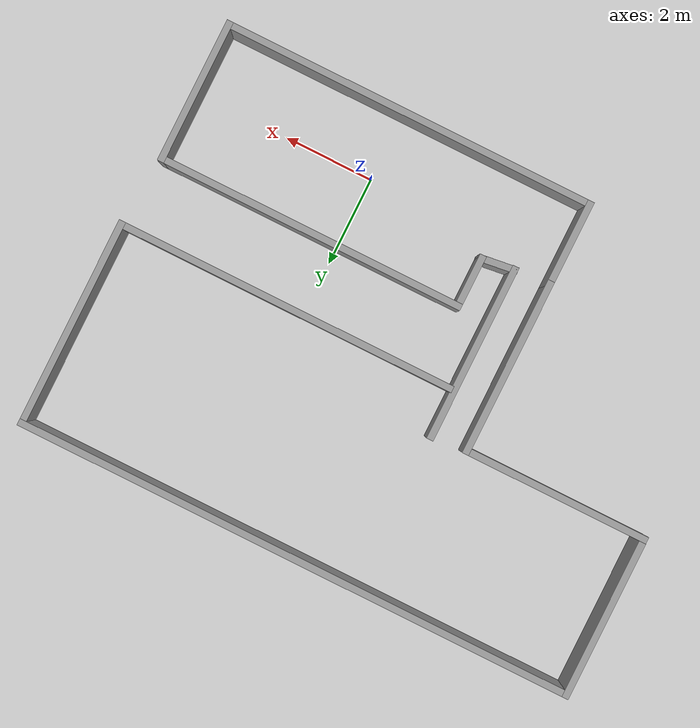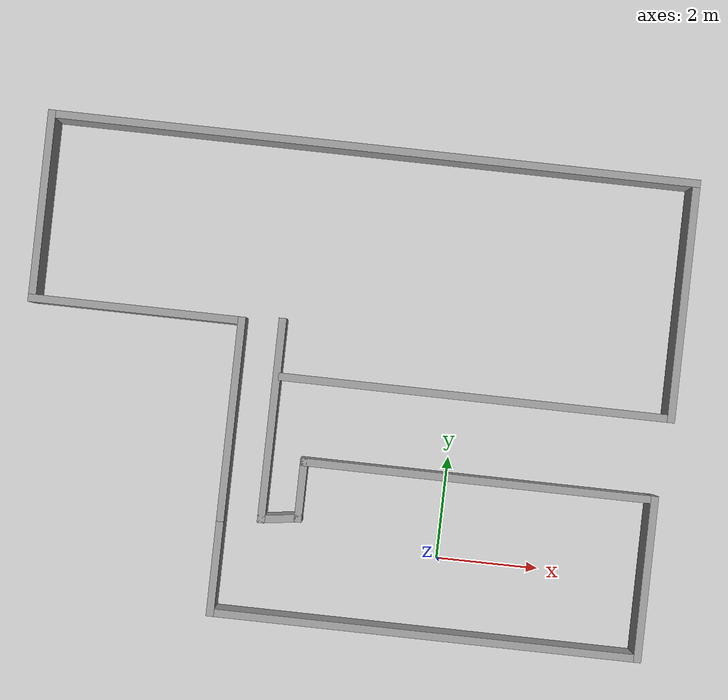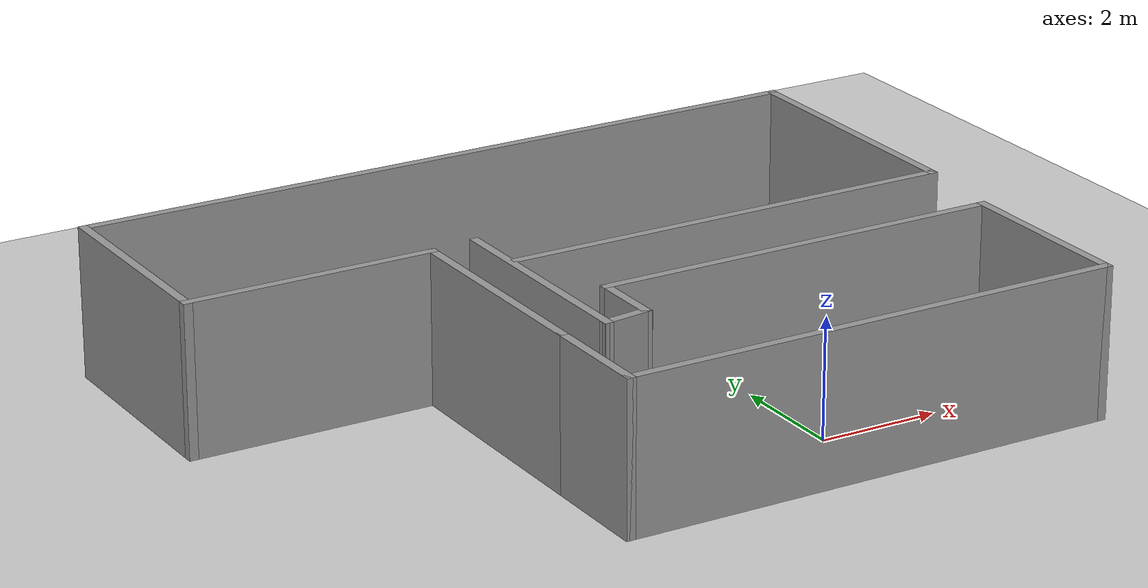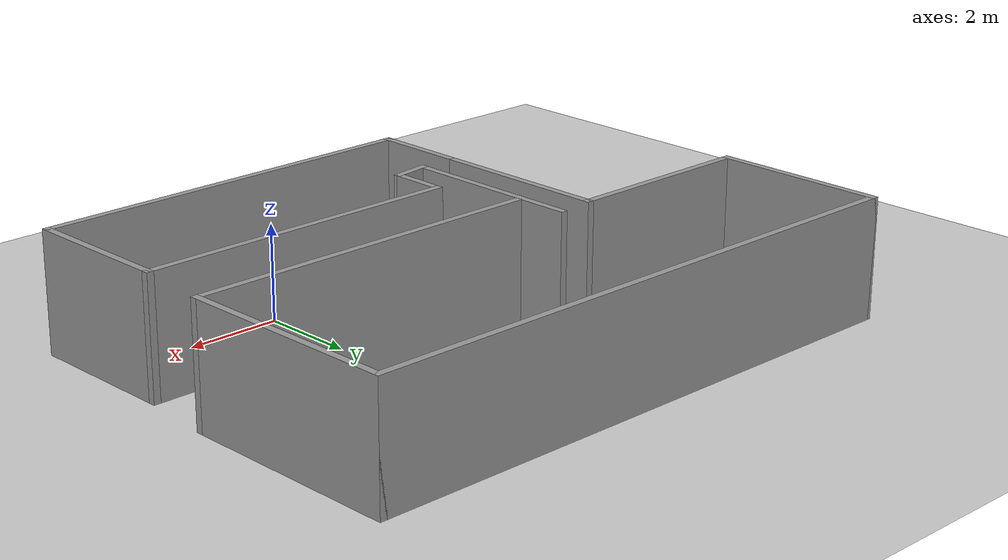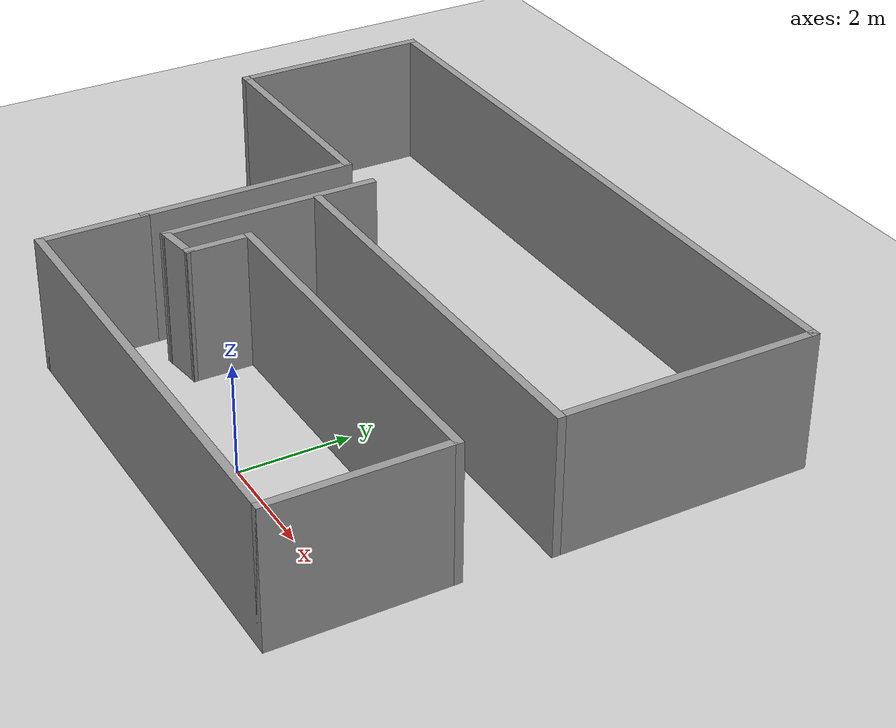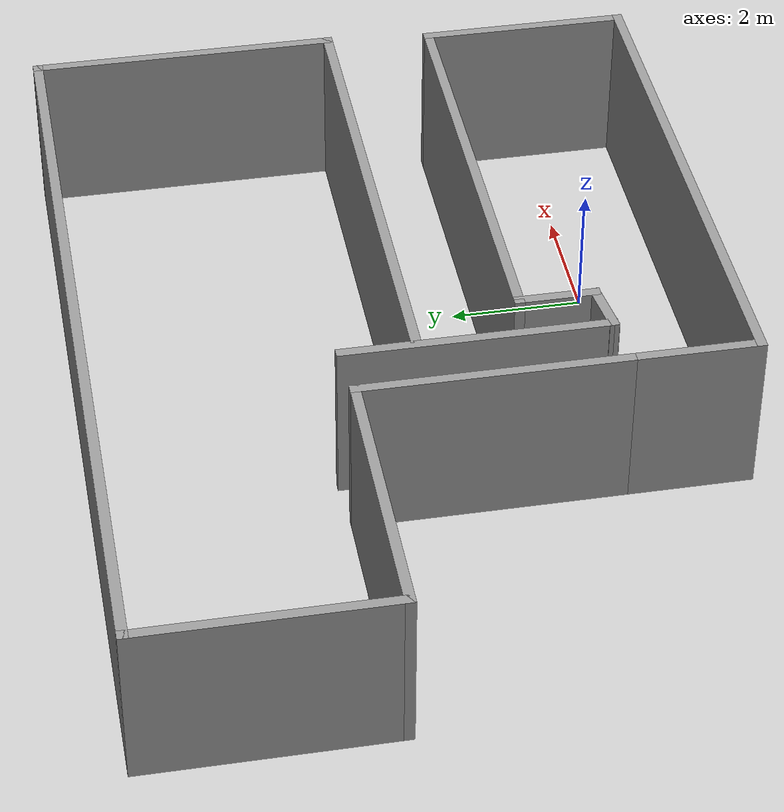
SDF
<sdf version="1.7">
 <world name="default">
  <light name="sun" type="directional">
   <pose>0 0 10 0 -0 0</pose>
   <diffuse>0.8 0.8 0.8 1</diffuse>
   <specular>0.2 0.2 0.2 1</specular>
   <attenuation>
    <range>1000</range>
    <constant>0.9</constant>
    <linear>0.01</linear>
    <quadratic>0.001</quadratic>
   </attenuation>
   <direction>-0.5 0.1 -0.9</direction>
   <spot><inner_angle>0</inner_angle><outer_angle>0</outer_angle><falloff>0</falloff></spot>
  </light>
  <model name="ground_plane">
   <static>1</static>
   <link name="link">
    <collision name="collision">
     <geometry><plane><normal>0 0 1</normal><size>100 100</size></plane></geometry>
     <surface>
      <contact><collide_bitmask>65535</collide_bitmask></contact>
      <friction><ode><mu>100</mu><mu2>50</mu2></ode></friction>
     </surface>
    </collision>
    <visual name="visual">
     <cast_shadows>0</cast_shadows>
     <geometry><plane><normal>0 0 1</normal><size>100 100</size></plane></geometry>
     <material>
      <script><uri>file://media/materials/scripts/gazebo.material</uri><name>Gazebo/Grey</name></script>
     </material>
    </visual>
   </link>
  </model>
  <gravity>0 0 -9.8</gravity>
  <magnetic_field>6e-06 2.3e-05 -4.2e-05</magnetic_field>
  <atmosphere type="adiabatic"/>
  <physics type="ode">
   <max_step_size>0.001</max_step_size>
   <real_time_factor>1</real_time_factor>
   <real_time_update_rate>1000</real_time_update_rate>
  </physics>
  <scene><ambient>0.4 0.4 0.4 1</ambient><background>0.7 0.7 0.7 1</background><shadows>1</shadows></scene>
  <spherical_coordinates>
   <surface_model>EARTH_WGS84</surface_model>
   <latitude_deg>0</latitude_deg>
   <longitude_deg>0</longitude_deg>
   <elevation>0</elevation>
   <heading_deg>0</heading_deg>
  </spherical_coordinates>
  <model name="thin_wall_2">
   <pose>-2.11229 3.19349 0 0 -0 0</pose>
   <link name="Wall_0">
    <collision name="Wall_0_Collision">
     <geometry><box><size>4 0.15 2.5</size></box></geometry>
     <pose>0 0 1.25 0 -0 0</pose>
    </collision>
    <visual name="Wall_0_Visual">
     <pose>0 0 1.25 0 -0 0</pose>
     <geometry><box><size>4 0.15 2.5</size></box></geometry>
     <material>
      <script><uri>file://media/materials/scripts/gazebo.material</uri><name>Gazebo/Grey</name></script>
      <ambient>1 1 1 1</ambient>
     </material>
     <meta><layer>0</layer></meta>
    </visual>
    <pose>-2.2 -0.875 0 0 -0 -1.5708</pose>
   </link>
   <link name="Wall_10">
    <collision name="Wall_10_Collision">
     <geometry><box><size>3.25 0.15 2.5</size></box></geometry>
     <pose>0 0 1.25 0 -0 0</pose>
    </collision>
    <visual name="Wall_10_Visual">
     <pose>0 0 1.25 0 -0 0</pose>
     <geometry><box><size>3.25 0.15 2.5</size></box></geometry>
     <material>
      <script><uri>file://media/materials/scripts/gazebo.material</uri><name>Gazebo/Grey</name></script>
      <ambient>1 1 1 1</ambient>
     </material>
     <meta><layer>0</layer></meta>
    </visual>
    <pose>6.15 -3.1 0 0 -0 1.5708</pose>
   </link>
   <link name="Wall_11">
    <collision name="Wall_11_Collision">
     <geometry><box><size>7 0.15 2.5</size></box></geometry>
     <pose>0 0 1.25 0 -0 0</pose>
    </collision>
    <visual name="Wall_11_Visual">
     <pose>0 0 1.25 0 -0 0</pose>
     <geometry><box><size>7 0.15 2.5</size></box></geometry>
     <material>
      <script><uri>file://media/materials/scripts/gazebo.material</uri><name>Gazebo/Grey</name></script>
      <ambient>1 1 1 1</ambient>
     </material>
     <meta><layer>0</layer></meta>
    </visual>
    <pose>2.725 -1.55 0 0 -0 3.14159</pose>
   </link>
   <link name="Wall_12">
    <collision name="Wall_12_Collision">
     <geometry><box><size>1.25 0.15 2.5</size></box></geometry>
     <pose>0 0 1.25 0 -0 0</pose>
    </collision>
    <visual name="Wall_12_Visual">
     <pose>0 0 1.25 0 -0 0</pose>
     <geometry><box><size>1.25 0.15 2.5</size></box></geometry>
     <material>
      <script><uri>file://media/materials/scripts/gazebo.material</uri><name>Gazebo/Grey</name></script>
      <ambient>1 1 1 1</ambient>
     </material>
     <meta><layer>0</layer></meta>
    </visual>
    <pose>-0.7 -2.1 0 0 -0 -1.5708</pose>
   </link>
   <link name="Wall_13">
    <collision name="Wall_13_Collision">
     <geometry><box><size>0.865681 0.15 2.5</size></box></geometry>
     <pose>0 0 1.25 0 -0 0</pose>
    </collision>
    <visual name="Wall_13_Visual">
     <pose>0 0 1.25 0 -0 0</pose>
     <geometry><box><size>0.865681 0.15 2.5</size></box></geometry>
     <material>
      <script><uri>file://media/materials/scripts/gazebo.material</uri><name>Gazebo/Grey</name></script>
      <ambient>1 1 1 1</ambient>
     </material>
     <meta><layer>0</layer></meta>
    </visual>
    <pose>-1.055 -2.695 0 0 -0 -3.01551</pose>
   </link>
   <link name="Wall_15">
    <collision name="Wall_15_Collision">
     <geometry><box><size>4.25 0.15 2.5</size></box></geometry>
     <pose>0 0 1.25 0 -0 0</pose>
    </collision>
    <visual name="Wall_15_Visual">
     <pose>0 0 1.25 0 -0 0</pose>
     <geometry><box><size>4.25 0.15 2.5</size></box></geometry>
     <material>
      <script><uri>file://media/materials/scripts/gazebo.material</uri><name>Gazebo/Grey</name></script>
      <ambient>1 1 1 1</ambient>
     </material>
     <meta><layer>0</layer></meta>
    </visual>
    <pose>-4.25 1.05 0 0 -0 3.14159</pose>
   </link>
   <link name="Wall_16">
    <collision name="Wall_16_Collision">
     <geometry><box><size>3.75 0.15 2.5</size></box></geometry>
     <pose>0 0 1.25 0 -0 0</pose>
    </collision>
    <visual name="Wall_16_Visual">
     <pose>0 0 1.25 0 -0 0</pose>
     <geometry><box><size>3.75 0.15 2.5</size></box></geometry>
     <material>
      <script><uri>file://media/materials/scripts/gazebo.material</uri><name>Gazebo/Grey</name></script>
      <ambient>1 1 1 1</ambient>
     </material>
     <meta><layer>0</layer></meta>
    </visual>
    <pose>-6.3 2.85 0 0 -0 1.5708</pose>
   </link>
   <link name="Wall_17">
    <collision name="Wall_17_Collision">
     <geometry><box><size>12.75 0.15 2.5</size></box></geometry>
     <pose>0 0 1.25 0 -0 0</pose>
    </collision>
    <visual name="Wall_17_Visual">
     <pose>0 0 1.25 0 -0 0</pose>
     <geometry><box><size>12.75 0.15 2.5</size></box></geometry>
     <material>
      <script><uri>file://media/materials/scripts/gazebo.material</uri><name>Gazebo/Grey</name></script>
      <ambient>1 1 1 1</ambient>
     </material>
     <meta><layer>0</layer></meta>
    </visual>
    <pose>0 4.65 0 0 -0 0</pose>
   </link>
   <link name="Wall_18">
    <collision name="Wall_18_Collision">
     <geometry><box><size>4.75 0.15 2.5</size></box></geometry>
     <pose>0 0 1.25 0 -0 0</pose>
    </collision>
    <visual name="Wall_18_Visual">
     <pose>0 0 1.25 0 -0 0</pose>
     <geometry><box><size>4.75 0.15 2.5</size></box></geometry>
     <material>
      <script><uri>file://media/materials/scripts/gazebo.material</uri><name>Gazebo/Grey</name></script>
      <ambient>1 1 1 1</ambient>
     </material>
     <meta><layer>0</layer></meta>
    </visual>
    <pose>6.3 2.35 0 0 -0 -1.5708</pose>
   </link>
   <link name="Wall_19">
    <collision name="Wall_19_Collision">
     <geometry><box><size>7.75 0.15 2.5</size></box></geometry>
     <pose>0 0 1.25 0 -0 0</pose>
    </collision>
    <visual name="Wall_19_Visual">
     <pose>0 0 1.25 0 -0 0</pose>
     <geometry><box><size>7.75 0.15 2.5</size></box></geometry>
     <material>
      <script><uri>file://media/materials/scripts/gazebo.material</uri><name>Gazebo/Grey</name></script>
      <ambient>1 1 1 1</ambient>
     </material>
     <meta><layer>0</layer></meta>
    </visual>
    <pose>2.5 0.05 0 0 -0 3.14159</pose>
   </link>
   <link name="Wall_4">
    <collision name="Wall_4_Collision">
     <geometry><box><size>4 0.15 2.5</size></box></geometry>
     <pose>0 0 1.25 0 -0 0</pose>
    </collision>
    <visual name="Wall_4_Visual">
     <pose>0 0 1.25 0 -0 0</pose>
     <geometry><box><size>4 0.15 2.5</size></box></geometry>
     <material>
      <script><uri>file://media/materials/scripts/gazebo.material</uri><name>Gazebo/Grey</name></script>
      <ambient>1 1 1 1</ambient>
     </material>
     <meta><layer>0</layer></meta>
    </visual>
    <pose>-1.41 -0.815 0 0 -0 -1.5708</pose>
   </link>
   <link name="Wall_6">
    <collision name="Wall_6_Collision">
     <geometry><box><size>2 0.15 2.5</size></box></geometry>
     <pose>0 0 1.25 0 -0 0</pose>
    </collision>
    <visual name="Wall_6_Visual">
     <pose>0 0 1.25 0 -0 0</pose>
     <geometry><box><size>2 0.15 2.5</size></box></geometry>
     <material>
      <script><uri>file://media/materials/scripts/gazebo.material</uri><name>Gazebo/Grey</name></script>
      <ambient>1 1 1 1</ambient>
     </material>
     <meta><layer>0</layer></meta>
    </visual>
    <pose>-2.2 -3.725 0 0 -0 -1.5708</pose>
   </link>
   <link name="Wall_7">
    <collision name="Wall_7_Collision">
     <geometry><box><size>8.5 0.15 2.5</size></box></geometry>
     <pose>0 0 1.25 0 -0 0</pose>
    </collision>
    <visual name="Wall_7_Visual">
     <pose>0 0 1.25 0 -0 0</pose>
     <geometry><box><size>8.5 0.15 2.5</size></box></geometry>
     <material>
      <script><uri>file://media/materials/scripts/gazebo.material</uri><name>Gazebo/Grey</name></script>
      <ambient>1 1 1 1</ambient>
     </material>
     <meta><layer>0</layer></meta>
    </visual>
    <pose>1.975 -4.65 0 0 -0 0</pose>
   </link>
   <static>1</static>
  </model>
 </world>
</sdf>
